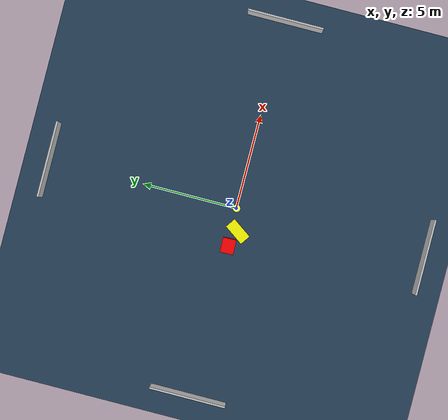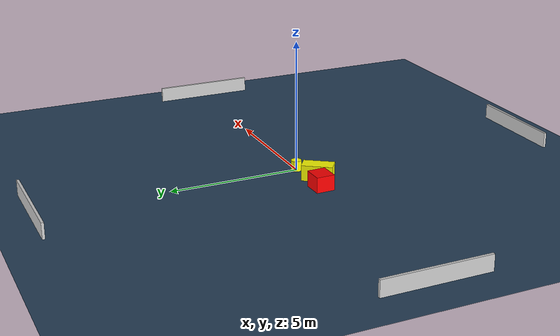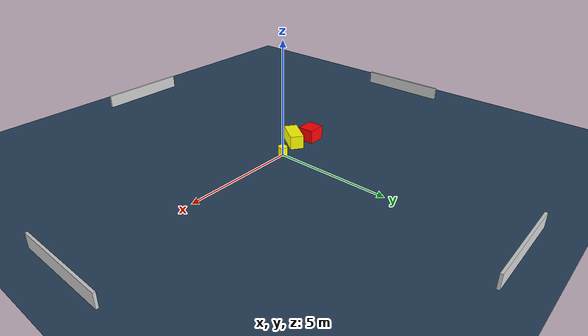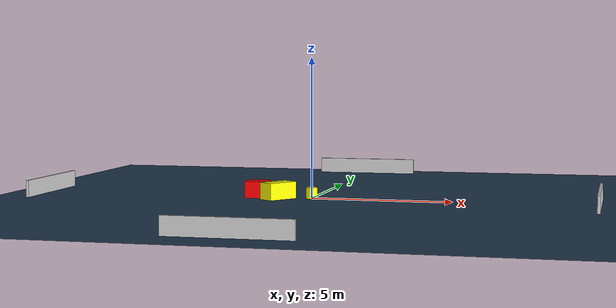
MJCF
<?xml version="1.0" ?>
<mujoco model="generated_environment">
  <option timestep="0.01" integrator="RK4" cone="elliptic"/>
  <default>
    <geom density="1"/>
  </default>
  <asset>
    <texture builtin="gradient" height="3072" name="skybox" rgb1="0.3 0.5 0.7" rgb2="0 0 0" type="skybox" width="512"/>
    <texture builtin="checker" height="300" name="groundplane" rgb1="0.2 0.3 0.4" rgb2="0.1 0.2 0.3" type="2d" width="300"/>
    <material name="groundplane" reflectance="0.2" texrepeat="5 5" texture="groundplane"/>
  </asset>
  <worldbody>
    <light dir="0 0 -1" directional="true" pos="0 0 1.5"/>
    <geom condim="3" friction="0.5 0.005 0.001" material="groundplane" name="floor" pos="0 0 0" size="0 0 0.05" type="plane"/>
    <body name="walls">
      <geom name="wall_1" condim="4" pos="-10.0 0.0 0.3" rgba="0.800000011920929 0.800000011920929 0.800000011920929 1.0" size="0.05 2.0 0.3" type="box"/>
      <geom name="wall_2" condim="4" pos="10.0 0.0 0.3" rgba="0.800000011920929 0.800000011920929 0.800000011920929 1.0" size="0.05 2.0 0.3" type="box"/>
      <geom name="wall_3" condim="4" pos="0.0 -10.0 0.3" rgba="0.800000011920929 0.800000011920929 0.800000011920929 1.0" size="2.0 0.05 0.3" type="box"/>
      <geom name="wall_4" condim="4" pos="0.0 10.0 0.3" rgba="0.800000011920929 0.800000011920929 0.800000011920929 1.0" size="2.0 0.05 0.3" type="box"/>
    </body>
    <body name="robot">
      <joint name="joint_x" type="slide" pos="0 0 0" axis="1 0 0"/>
      <joint name="joint_y" type="slide" pos="0 0 0" axis="0 1 0"/>
      <geom name="robot" type="cylinder" pos="0.0 0.0 0.2" size="0.2 0.2 0.0" mass="5.0" friction="1.0 0.005 0.0001" condim="4" rgba="1.0 1.0 0.0 1.0"/>
    </body>
    <body name="obstacle_1_movable">
      <geom name="obstacle_1_movable" condim="4" pos="-1.1331522723285863 -0.35922692897618447 0.3" euler="0 0 55.11490656391841" friction="0.0 0.005 0.001" rgba="1.0 1.0 0.0 1.0" size="0.5869156313241084 0.2960446744401682 0.3" type="box" mass="0.1"/>
      <joint type="free"/>
    </body>
    <body name="obstacle_2_static">
      <geom name="obstacle_2_static" condim="4" pos="-1.9752686432878221 -0.06578255736905397 0.3" euler="0 0 181.65031115313343" friction="0.0 0.005 0.001" rgba="1.0 0.0 0.0 1.0" size="0.3862461387439468 0.34961539378873907 0.3" type="box"/>
    </body>
  </worldbody>
  <actuator>
    <motor name="actuator_x" joint="joint_x" gear="1" ctrlrange="-1 1"/>
    <motor name="actuator_y" joint="joint_y" gear="1" ctrlrange="-1 1"/>
  </actuator>
</mujoco>
